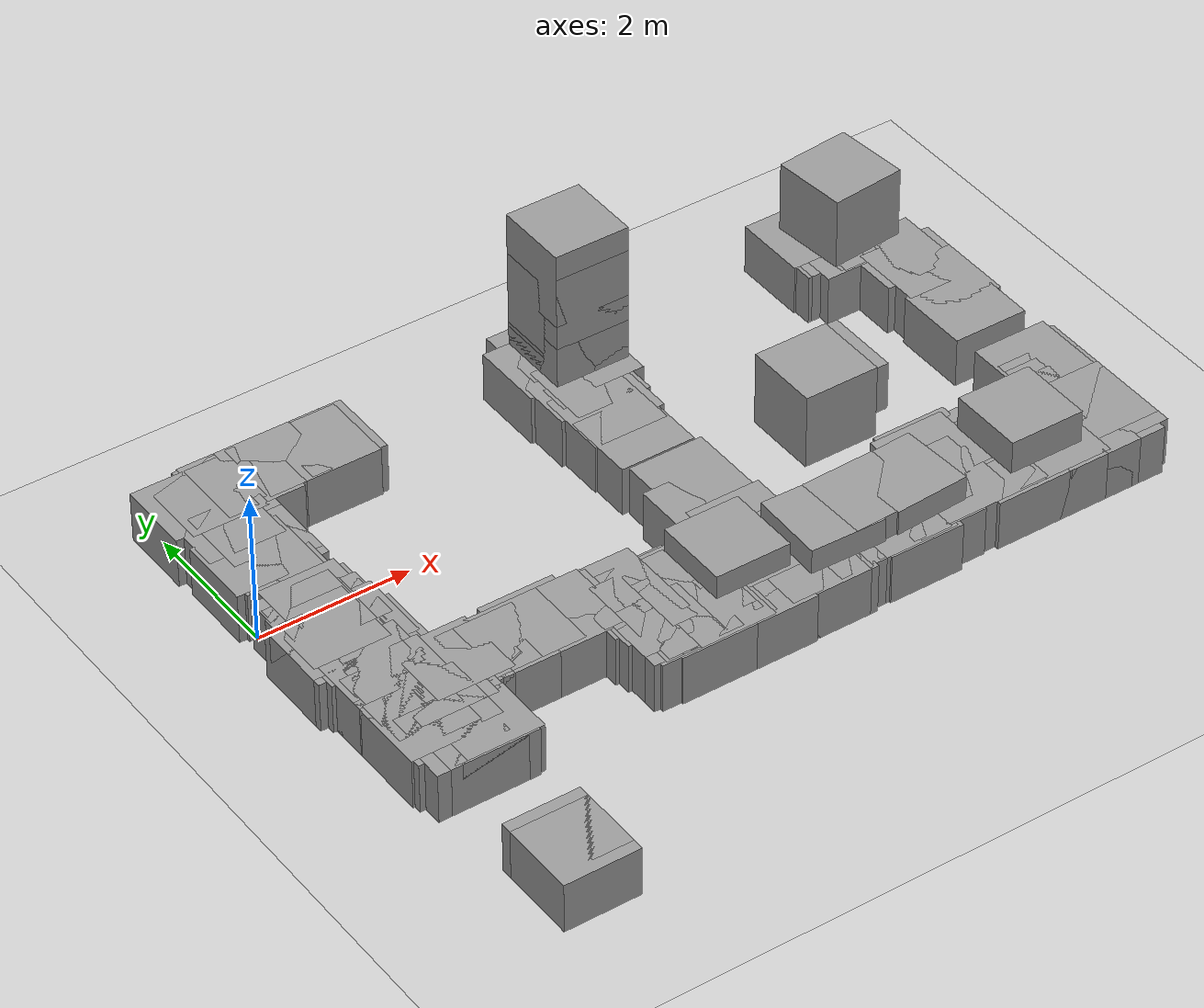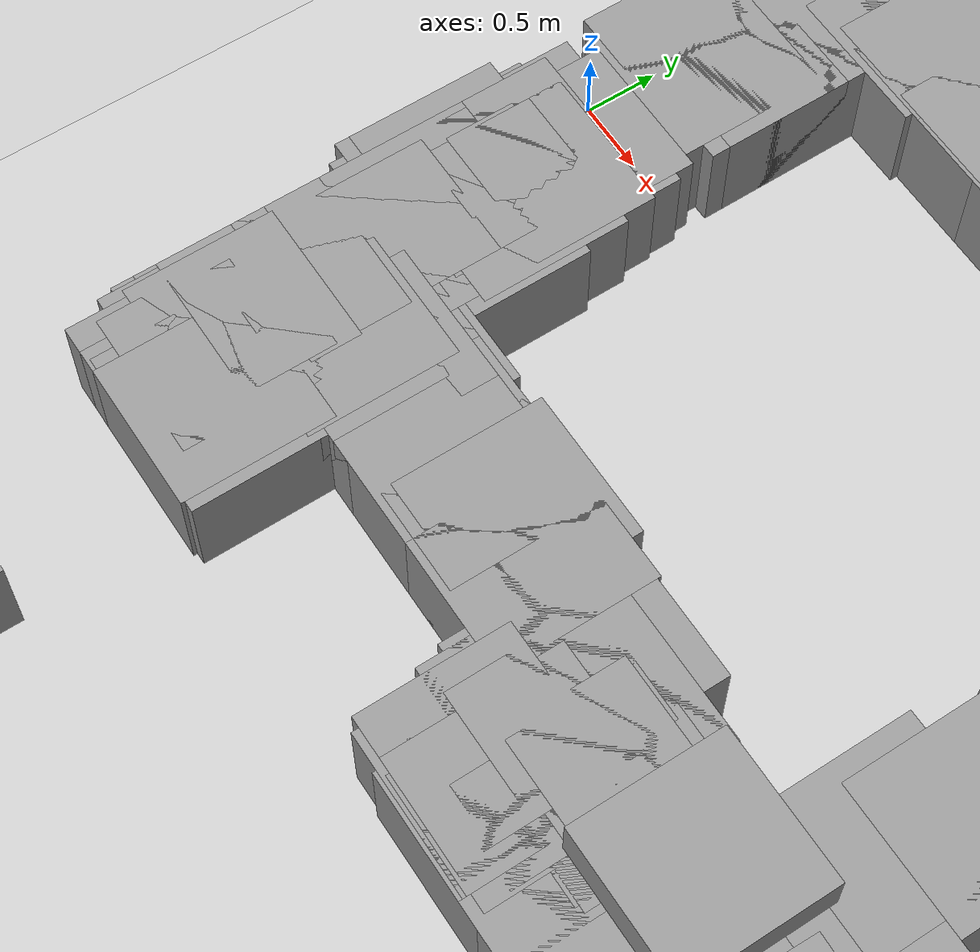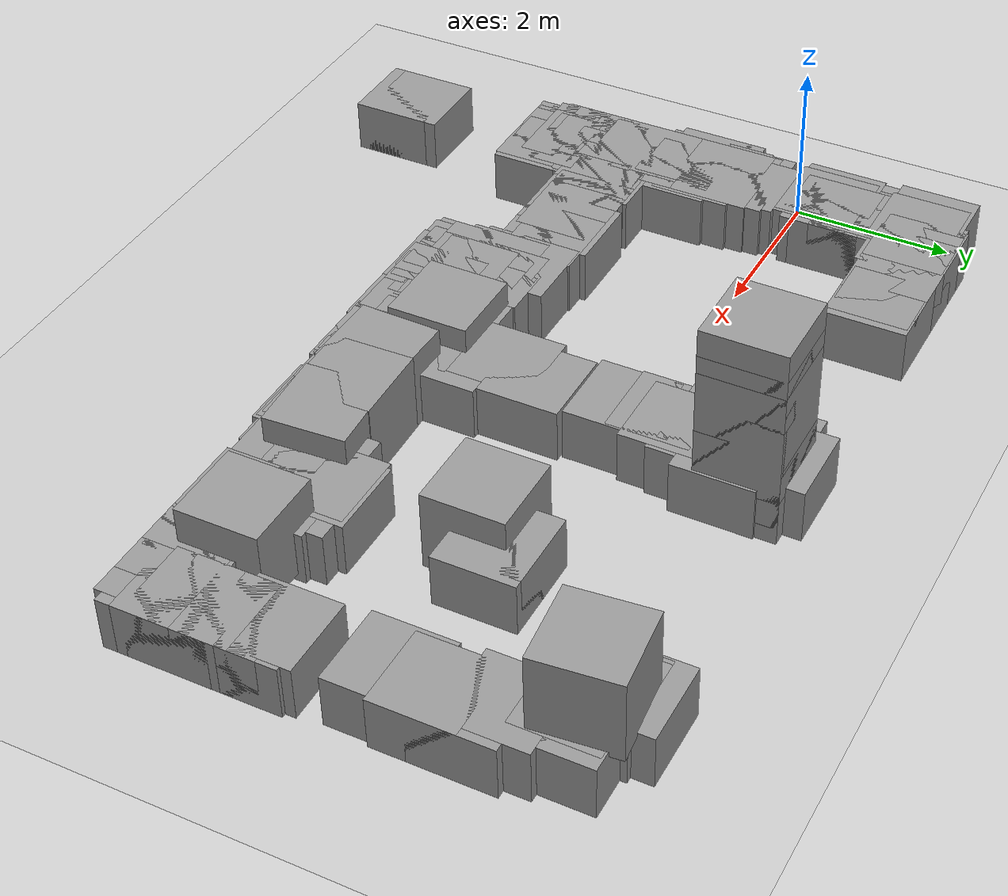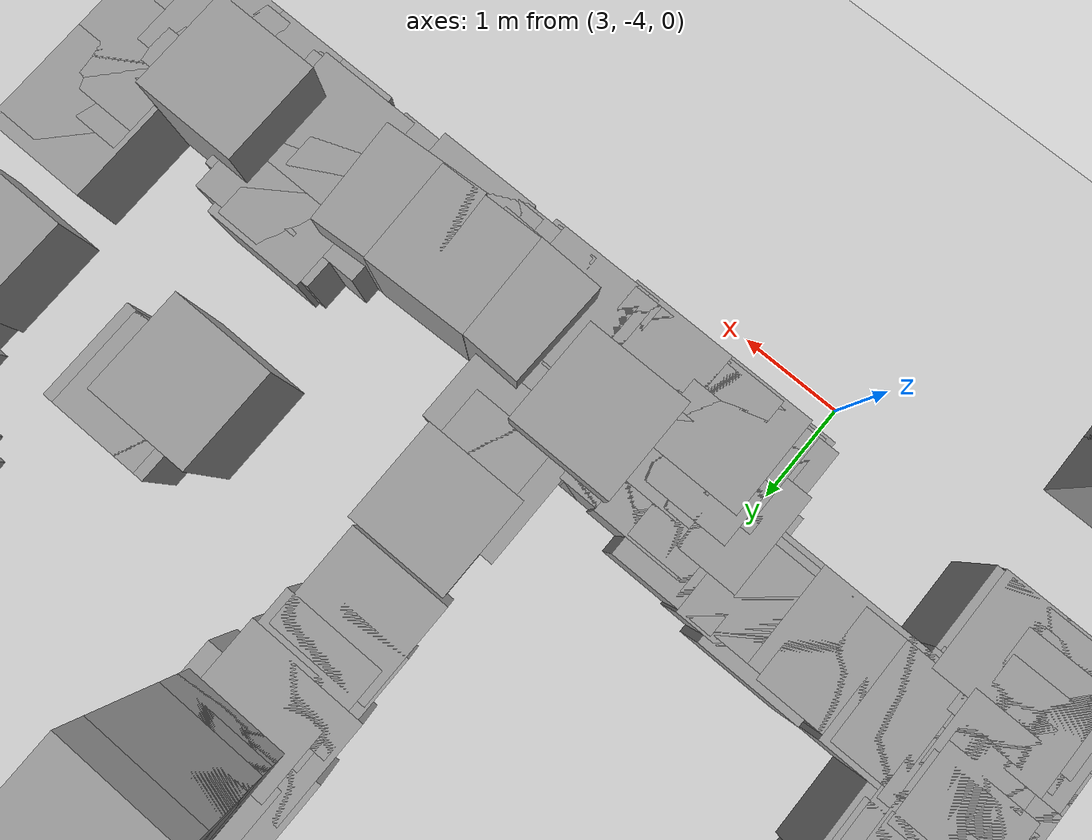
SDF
<sdf version="1.7">
 <world name="default">
  <model name="ground_plane">
   <static>1</static>
   <link name="link">
    <collision name="collision">
     <geometry><plane><normal>0 0 1</normal><size>100 100</size></plane></geometry>
     <surface>
      <contact><collide_bitmask>65535</collide_bitmask></contact>
      <friction><ode><mu>100</mu><mu2>50</mu2></ode></friction>
     </surface>
    </collision>
    <visual name="visual">
     <cast_shadows>0</cast_shadows>
     <geometry><plane><normal>0 0 1</normal><size>100 100</size></plane></geometry>
     <material>
      <script><uri>file://media/materials/scripts/gazebo.material</uri><name>Gazebo/Grey</name></script>
     </material>
    </visual>
   </link>
  </model>
  <include>
   <uri>model://unit_box</uri>
   <name>map_box_158</name>
   <pose>4.95719 1.04754 0.15000 0.00000 0.00000 0.00000</pose>
   <scale>0.05000 2.30000 0.30000</scale>
  </include>
  <include>
   <uri>model://unit_box</uri>
   <name>map_box_159</name>
   <pose>5.10719 1.82254 0.15000 0.00000 0.00000 0.00000</pose>
   <scale>0.05000 0.75000 0.30000</scale>
  </include>
  <include>
   <uri>model://unit_box</uri>
   <name>map_box_166</name>
   <pose>4.90719 1.59754 0.15000 0.00000 0.00000 0.00000</pose>
   <scale>0.05000 1.10000 0.30000</scale>
  </include>
  <include>
   <uri>model://unit_box</uri>
   <name>map_box_171</name>
   <pose>5.15719 0.99754 0.15000 0.00000 0.00000 0.00000</pose>
   <scale>0.05000 2.20000 0.30000</scale>
  </include>
  <include>
   <uri>model://unit_box</uri>
   <name>map_box_177</name>
   <pose>0.35719 1.22254 0.15000 0.00000 0.00000 0.00000</pose>
   <scale>0.05000 1.55000 0.30000</scale>
  </include>
  <include>
   <uri>model://unit_box</uri>
   <name>map_box_178</name>
   <pose>0.45719 1.72254 0.15000 0.00000 0.00000 0.00000</pose>
   <scale>0.05000 0.55000 0.30000</scale>
  </include>
  <include>
   <uri>model://unit_box</uri>
   <name>map_box_181</name>
   <pose>0.50719 1.17254 0.15000 0.00000 0.00000 0.00000</pose>
   <scale>0.05000 1.55000 0.30000</scale>
  </include>
  <include>
   <uri>model://unit_box</uri>
   <name>map_box_183</name>
   <pose>0.90719 1.84754 0.15000 0.00000 0.00000 0.00000</pose>
   <scale>0.05000 0.10000 0.30000</scale>
  </include>
  <include>
   <uri>model://unit_box</uri>
   <name>map_box_184</name>
   <pose>1.20719 1.84754 0.15000 0.00000 0.00000 0.00000</pose>
   <scale>0.25000 0.10000 0.30000</scale>
  </include>
  <include>
   <uri>model://unit_box</uri>
   <name>map_box_185</name>
   <pose>1.40719 1.84754 0.15000 0.00000 0.00000 0.00000</pose>
   <scale>0.05000 0.10000 0.30000</scale>
  </include>
  <include>
   <uri>model://unit_box</uri>
   <name>map_box_186</name>
   <pose>1.80719 1.84754 0.15000 0.00000 0.00000 0.00000</pose>
   <scale>0.35000 0.10000 0.30000</scale>
  </include>
  <include>
   <uri>model://unit_box</uri>
   <name>map_box_187</name>
   <pose>2.10719 1.84754 0.15000 0.00000 0.00000 0.00000</pose>
   <scale>0.15000 0.10000 0.30000</scale>
  </include>
  <include>
   <uri>model://unit_box</uri>
   <name>map_box_188</name>
   <pose>8.83219 1.84754 0.15000 0.00000 0.00000 0.00000</pose>
   <scale>0.10000 0.10000 0.30000</scale>
  </include>
  <include>
   <uri>model://unit_box</uri>
   <name>map_box_189</name>
   <pose>0.83219 1.82254 0.15000 0.00000 0.00000 0.00000</pose>
   <scale>0.10000 0.05000 0.30000</scale>
  </include>
  <include>
   <uri>model://unit_box</uri>
   <name>map_box_190</name>
   <pose>1.00719 1.82254 0.15000 0.00000 0.00000 0.00000</pose>
   <scale>0.15000 0.05000 0.30000</scale>
  </include>
  <include>
   <uri>model://unit_box</uri>
   <name>map_box_191</name>
   <pose>1.35719 1.82254 0.15000 0.00000 0.00000 0.00000</pose>
   <scale>0.05000 0.05000 0.30000</scale>
  </include>
  <include>
   <uri>model://unit_box</uri>
   <name>map_box_192</name>
   <pose>1.53219 1.82254 0.15000 0.00000 0.00000 0.00000</pose>
   <scale>0.20000 0.05000 0.30000</scale>
  </include>
  <include>
   <uri>model://unit_box</uri>
   <name>map_box_193</name>
   <pose>2.00719 1.82254 0.15000 0.00000 0.00000 0.00000</pose>
   <scale>0.05000 0.05000 0.30000</scale>
  </include>
  <include>
   <uri>model://unit_box</uri>
   <name>map_box_194</name>
   <pose>8.90719 1.59754 0.15000 0.00000 0.00000 0.00000</pose>
   <scale>0.05000 0.50000 0.30000</scale>
  </include>
  <include>
   <uri>model://unit_box</uri>
   <name>map_box_195</name>
   <pose>0.25719 1.77254 0.15000 0.00000 0.00000 0.00000</pose>
   <scale>0.05000 0.05000 0.30000</scale>
  </include>
  <include>
   <uri>model://unit_box</uri>
   <name>map_box_196</name>
   <pose>0.95719 1.77254 0.15000 0.00000 0.00000 0.00000</pose>
   <scale>0.05000 0.05000 0.30000</scale>
  </include>
  <include>
   <uri>model://unit_box</uri>
   <name>map_box_197</name>
   <pose>8.85719 1.59754 0.15000 0.00000 0.00000 0.00000</pose>
   <scale>0.05000 0.40000 0.30000</scale>
  </include>
  <include>
   <uri>model://unit_box</uri>
   <name>map_box_198</name>
   <pose>9.25719 1.49754 0.15000 0.00000 0.00000 0.00000</pose>
   <scale>0.05000 0.20000 0.30000</scale>
  </include>
  <include>
   <uri>model://unit_box</uri>
   <name>map_box_199</name>
   <pose>9.40719 1.52254 0.15000 0.00000 0.00000 0.00000</pose>
   <scale>0.15000 0.15000 0.30000</scale>
  </include>
  <include>
   <uri>model://unit_box</uri>
   <name>map_box_200</name>
   <pose>9.18219 1.47254 0.15000 0.00000 0.00000 0.00000</pose>
   <scale>0.10000 0.15000 0.30000</scale>
  </include>
  <include>
   <uri>model://unit_box</uri>
   <name>map_box_201</name>
   <pose>9.30719 1.47254 0.15000 0.00000 0.00000 0.00000</pose>
   <scale>0.05000 0.15000 0.30000</scale>
  </include>
  <include>
   <uri>model://unit_box</uri>
   <name>map_box_202</name>
   <pose>9.50719 0.89754 0.15000 0.00000 0.00000 0.00000</pose>
   <scale>0.05000 1.30000 0.30000</scale>
  </include>
  <include>
   <uri>model://unit_box</uri>
   <name>map_box_203</name>
   <pose>9.03219 1.44754 0.15000 0.00000 0.00000 0.00000</pose>
   <scale>0.20000 0.10000 0.30000</scale>
  </include>
  <include>
   <uri>model://unit_box</uri>
   <name>map_box_204</name>
   <pose>9.55719 -0.35246 0.15000 0.00000 0.00000 0.00000</pose>
   <scale>0.05000 3.70000 0.30000</scale>
  </include>
  <include>
   <uri>model://unit_box</uri>
   <name>map_box_205</name>
   <pose>5.10719 0.64754 0.15000 0.00000 0.00000 0.00000</pose>
   <scale>0.05000 1.50000 0.30000</scale>
  </include>
  <include>
   <uri>model://unit_box</uri>
   <name>map_box_206</name>
   <pose>5.30719 1.34754 0.15000 0.00000 0.00000 0.00000</pose>
   <scale>0.25000 0.10000 0.30000</scale>
  </include>
  <include>
   <uri>model://unit_box</uri>
   <name>map_box_207</name>
   <pose>0.55719 1.02254 0.15000 0.00000 0.00000 0.00000</pose>
   <scale>0.05000 0.15000 0.30000</scale>
  </include>
  <include>
   <uri>model://unit_box</uri>
   <name>map_box_208</name>
   <pose>0.55719 0.77254 0.15000 0.00000 0.00000 0.00000</pose>
   <scale>0.05000 0.05000 0.30000</scale>
  </include>
  <include>
   <uri>model://unit_box</uri>
   <name>map_box_209</name>
   <pose>5.00719 0.44754 0.15000 0.00000 0.00000 0.00000</pose>
   <scale>0.05000 0.60000 0.30000</scale>
  </include>
  <include>
   <uri>model://unit_box</uri>
   <name>map_box_210</name>
   <pose>0.55719 0.64754 0.15000 0.00000 0.00000 0.00000</pose>
   <scale>0.05000 0.10000 0.30000</scale>
  </include>
  <include>
   <uri>model://unit_box</uri>
   <name>map_box_211</name>
   <pose>9.60719 0.59754 0.15000 0.00000 0.00000 0.00000</pose>
   <scale>0.05000 0.20000 0.30000</scale>
  </include>
  <include>
   <uri>model://unit_box</uri>
   <name>map_box_212</name>
   <pose>0.30719 0.57254 0.15000 0.00000 0.00000 0.00000</pose>
   <scale>0.05000 0.05000 0.30000</scale>
  </include>
  <include>
   <uri>model://unit_box</uri>
   <name>map_box_213</name>
   <pose>0.45719 0.52254 0.15000 0.00000 0.00000 0.00000</pose>
   <scale>0.05000 0.15000 0.30000</scale>
  </include>
  <include>
   <uri>model://unit_box</uri>
   <name>map_box_214</name>
   <pose>0.40719 0.52254 0.15000 0.00000 0.00000 0.00000</pose>
   <scale>0.05000 0.05000 0.30000</scale>
  </include>
  <include>
   <uri>model://unit_box</uri>
   <name>map_box_215</name>
   <pose>9.60719 0.17254 0.15000 0.00000 0.00000 0.00000</pose>
   <scale>0.05000 0.45000 0.30000</scale>
  </include>
  <include>
   <uri>model://unit_box</uri>
   <name>map_box_216</name>
   <pose>5.03219 -0.05246 0.15000 0.00000 0.00000 0.00000</pose>
   <scale>0.10000 0.10000 0.30000</scale>
  </include>
  <include>
   <uri>model://unit_box</uri>
   <name>map_box_217</name>
   <pose>7.55719 -0.22746 0.15000 0.00000 0.00000 0.00000</pose>
   <scale>0.15000 0.15000 0.30000</scale>
  </include>
  <include>
   <uri>model://unit_box</uri>
   <name>map_box_218</name>
   <pose>7.65719 -0.22746 0.15000 0.00000 0.00000 0.00000</pose>
   <scale>0.05000 0.05000 0.30000</scale>
  </include>
  <include>
   <uri>model://unit_box</uri>
   <name>map_box_219</name>
   <pose>9.60719 -1.62746 0.15000 0.00000 0.00000 0.00000</pose>
   <scale>0.05000 2.75000 0.30000</scale>
  </include>
  <include>
   <uri>model://unit_box</uri>
   <name>map_box_220</name>
   <pose>0.53219 -0.47746 0.15000 0.00000 0.00000 0.00000</pose>
   <scale>0.20000 0.05000 0.30000</scale>
  </include>
  <include>
   <uri>model://unit_box</uri>
   <name>map_box_221</name>
   <pose>0.58219 -0.60246 0.15000 0.00000 0.00000 0.00000</pose>
   <scale>0.10000 0.20000 0.30000</scale>
  </include>
  <include>
   <uri>model://unit_box</uri>
   <name>map_box_222</name>
   <pose>0.38219 -0.60246 0.15000 0.00000 0.00000 0.00000</pose>
   <scale>0.10000 0.10000 0.30000</scale>
  </include>
  <include>
   <uri>model://unit_box</uri>
   <name>map_box_223</name>
   <pose>0.65719 -1.02746 0.15000 0.00000 0.00000 0.00000</pose>
   <scale>0.05000 0.95000 0.30000</scale>
  </include>
  <include>
   <uri>model://unit_box</uri>
   <name>map_box_224</name>
   <pose>0.35719 -0.92746 0.15000 0.00000 0.00000 0.00000</pose>
   <scale>0.05000 0.55000 0.30000</scale>
  </include>
  <include>
   <uri>model://unit_box</uri>
   <name>map_box_225</name>
   <pose>0.60719 -0.80246 0.15000 0.00000 0.00000 0.00000</pose>
   <scale>0.05000 0.20000 0.30000</scale>
  </include>
  <include>
   <uri>model://unit_box</uri>
   <name>map_box_226</name>
   <pose>0.40719 -0.77746 0.15000 0.00000 0.00000 0.00000</pose>
   <scale>0.05000 0.05000 0.30000</scale>
  </include>
  <include>
   <uri>model://unit_box</uri>
   <name>map_box_227</name>
   <pose>0.40719 -0.87746 0.15000 0.00000 0.00000 0.00000</pose>
   <scale>0.05000 0.05000 0.30000</scale>
  </include>
  <include>
   <uri>model://unit_box</uri>
   <name>map_box_228</name>
   <pose>0.60719 -1.02746 0.15000 0.00000 0.00000 0.00000</pose>
   <scale>0.05000 0.15000 0.30000</scale>
  </include>
  <include>
   <uri>model://unit_box</uri>
   <name>map_box_229</name>
   <pose>0.25719 -1.07746 0.15000 0.00000 0.00000 0.00000</pose>
   <scale>0.05000 0.05000 0.30000</scale>
  </include>
  <include>
   <uri>model://unit_box</uri>
   <name>map_box_230</name>
   <pose>0.43219 -1.07746 0.15000 0.00000 0.00000 0.00000</pose>
   <scale>0.10000 0.05000 0.30000</scale>
  </include>
  <include>
   <uri>model://unit_box</uri>
   <name>map_box_231</name>
   <pose>5.10719 -1.07746 0.15000 0.00000 0.00000 0.00000</pose>
   <scale>0.25000 0.05000 0.30000</scale>
  </include>
  <include>
   <uri>model://unit_box</uri>
   <name>map_box_232</name>
   <pose>0.40719 -1.37746 0.15000 0.00000 0.00000 0.00000</pose>
   <scale>0.05000 0.55000 0.30000</scale>
  </include>
  <include>
   <uri>model://unit_box</uri>
   <name>map_box_233</name>
   <pose>4.98219 -1.52746 0.15000 0.00000 0.00000 0.00000</pose>
   <scale>0.10000 0.85000 0.30000</scale>
  </include>
  <include>
   <uri>model://unit_box</uri>
   <name>map_box_234</name>
   <pose>5.18219 -2.07746 0.15000 0.00000 0.00000 0.00000</pose>
   <scale>0.10000 1.95000 0.30000</scale>
  </include>
  <include>
   <uri>model://unit_box</uri>
   <name>map_box_235</name>
   <pose>0.25719 -1.17746 0.15000 0.00000 0.00000 0.00000</pose>
   <scale>0.05000 0.05000 0.30000</scale>
  </include>
  <include>
   <uri>model://unit_box</uri>
   <name>map_box_236</name>
   <pose>0.60719 -1.20246 0.15000 0.00000 0.00000 0.00000</pose>
   <scale>0.05000 0.10000 0.30000</scale>
  </include>
  <include>
   <uri>model://unit_box</uri>
   <name>map_box_237</name>
   <pose>0.70719 -1.32746 0.15000 0.00000 0.00000 0.00000</pose>
   <scale>0.05000 0.25000 0.30000</scale>
  </include>
  <include>
   <uri>model://unit_box</uri>
   <name>map_box_238</name>
   <pose>0.35719 -1.27746 0.15000 0.00000 0.00000 0.00000</pose>
   <scale>0.05000 0.05000 0.30000</scale>
  </include>
  <include>
   <uri>model://unit_box</uri>
   <name>map_box_239</name>
   <pose>0.60719 -1.32746 0.15000 0.00000 0.00000 0.00000</pose>
   <scale>0.05000 0.05000 0.30000</scale>
  </include>
  <include>
   <uri>model://unit_box</uri>
   <name>map_box_240</name>
   <pose>0.45719 -1.37746 0.15000 0.00000 0.00000 0.00000</pose>
   <scale>0.05000 0.05000 0.30000</scale>
  </include>
  <include>
   <uri>model://unit_box</uri>
   <name>map_box_241</name>
   <pose>0.58219 -2.07746 0.15000 0.00000 0.00000 0.00000</pose>
   <scale>0.10000 1.35000 0.30000</scale>
  </include>
  <include>
   <uri>model://unit_box</uri>
   <name>map_box_242</name>
   <pose>0.45719 -1.65246 0.15000 0.00000 0.00000 0.00000</pose>
   <scale>0.05000 0.10000 0.30000</scale>
  </include>
  <include>
   <uri>model://unit_box</uri>
   <name>map_box_243</name>
   <pose>0.40719 -1.75246 0.15000 0.00000 0.00000 0.00000</pose>
   <scale>0.05000 0.10000 0.30000</scale>
  </include>
  <include>
   <uri>model://unit_box</uri>
   <name>map_box_244</name>
   <pose>0.50719 -1.72746 0.15000 0.00000 0.00000 0.00000</pose>
   <scale>0.05000 0.05000 0.30000</scale>
  </include>
  <include>
   <uri>model://unit_box</uri>
   <name>map_box_245</name>
   <pose>9.65719 -1.75246 0.15000 0.00000 0.00000 0.00000</pose>
   <scale>0.05000 0.10000 0.30000</scale>
  </include>
  <include>
   <uri>model://unit_box</uri>
   <name>map_box_246</name>
   <pose>0.50719 -1.82746 0.15000 0.00000 0.00000 0.00000</pose>
   <scale>0.05000 0.05000 0.30000</scale>
  </include>
  <include>
   <uri>model://unit_box</uri>
   <name>map_box_247</name>
   <pose>0.40719 -1.87746 0.15000 0.00000 0.00000 0.00000</pose>
   <scale>0.05000 0.05000 0.30000</scale>
  </include>
  <include>
   <uri>model://unit_box</uri>
   <name>map_box_248</name>
   <pose>0.40719 -1.97746 0.15000 0.00000 0.00000 0.00000</pose>
   <scale>0.05000 0.05000 0.30000</scale>
  </include>
  <include>
   <uri>model://unit_box</uri>
   <name>map_box_249</name>
   <pose>5.00719 -2.52746 0.15000 0.00000 0.00000 0.00000</pose>
   <scale>0.05000 1.15000 0.30000</scale>
  </include>
  <include>
   <uri>model://unit_box</uri>
   <name>map_box_250</name>
   <pose>9.65719 -2.00246 0.15000 0.00000 0.00000 0.00000</pose>
   <scale>0.05000 0.10000 0.30000</scale>
  </include>
  <include>
   <uri>model://unit_box</uri>
   <name>map_box_251</name>
   <pose>0.45719 -2.05246 0.15000 0.00000 0.00000 0.00000</pose>
   <scale>0.05000 0.10000 0.30000</scale>
  </include>
  <include>
   <uri>model://unit_box</uri>
   <name>map_box_252</name>
   <pose>0.40719 -2.07746 0.15000 0.00000 0.00000 0.00000</pose>
   <scale>0.05000 0.05000 0.30000</scale>
  </include>
  <include>
   <uri>model://unit_box</uri>
   <name>map_box_253</name>
   <pose>2.35719 -2.10246 0.15000 0.00000 0.00000 0.00000</pose>
   <scale>1.95000 0.10000 0.30000</scale>
  </include>
  <include>
   <uri>model://unit_box</uri>
   <name>map_box_254</name>
   <pose>1.18219 -2.12746 0.15000 0.00000 0.00000 0.00000</pose>
   <scale>0.40000 0.05000 0.30000</scale>
  </include>
  <include>
   <uri>model://unit_box</uri>
   <name>map_box_255</name>
   <pose>3.35719 -2.57746 0.15000 0.00000 0.00000 0.00000</pose>
   <scale>0.05000 0.95000 0.30000</scale>
  </include>
  <include>
   <uri>model://unit_box</uri>
   <name>map_box_256</name>
   <pose>9.65719 -2.12746 0.15000 0.00000 0.00000 0.00000</pose>
   <scale>0.05000 0.05000 0.30000</scale>
  </include>
  <include>
   <uri>model://unit_box</uri>
   <name>map_box_257</name>
   <pose>0.40719 -2.17746 0.15000 0.00000 0.00000 0.00000</pose>
   <scale>0.05000 0.05000 0.30000</scale>
  </include>
  <include>
   <uri>model://unit_box</uri>
   <name>map_box_258</name>
   <pose>1.10719 -2.17746 0.15000 0.00000 0.00000 0.00000</pose>
   <scale>0.35000 0.05000 0.30000</scale>
  </include>
  <include>
   <uri>model://unit_box</uri>
   <name>map_box_259</name>
   <pose>1.35719 -2.17746 0.15000 0.00000 0.00000 0.00000</pose>
   <scale>0.05000 0.05000 0.30000</scale>
  </include>
  <include>
   <uri>model://unit_box</uri>
   <name>map_box_260</name>
   <pose>1.50719 -2.17746 0.15000 0.00000 0.00000 0.00000</pose>
   <scale>0.05000 0.05000 0.30000</scale>
  </include>
  <include>
   <uri>model://unit_box</uri>
   <name>map_box_261</name>
   <pose>1.83219 -2.17746 0.15000 0.00000 0.00000 0.00000</pose>
   <scale>0.20000 0.05000 0.30000</scale>
  </include>
  <include>
   <uri>model://unit_box</uri>
   <name>map_box_262</name>
   <pose>2.08219 -2.17746 0.15000 0.00000 0.00000 0.00000</pose>
   <scale>0.20000 0.05000 0.30000</scale>
  </include>
  <include>
   <uri>model://unit_box</uri>
   <name>map_box_263</name>
   <pose>2.63219 -2.17746 0.15000 0.00000 0.00000 0.00000</pose>
   <scale>0.20000 0.05000 0.30000</scale>
  </include>
  <include>
   <uri>model://unit_box</uri>
   <name>map_box_264</name>
   <pose>3.30719 -2.20246 0.15000 0.00000 0.00000 0.00000</pose>
   <scale>0.05000 0.10000 0.30000</scale>
  </include>
  <include>
   <uri>model://unit_box</uri>
   <name>map_box_265</name>
   <pose>0.48219 -2.22746 0.15000 0.00000 0.00000 0.00000</pose>
   <scale>0.10000 0.05000 0.30000</scale>
  </include>
  <include>
   <uri>model://unit_box</uri>
   <name>map_box_266</name>
   <pose>0.95719 -2.22746 0.15000 0.00000 0.00000 0.00000</pose>
   <scale>0.05000 0.05000 0.30000</scale>
  </include>
  <include>
   <uri>model://unit_box</uri>
   <name>map_box_267</name>
   <pose>1.10719 -2.22746 0.15000 0.00000 0.00000 0.00000</pose>
   <scale>0.05000 0.05000 0.30000</scale>
  </include>
  <include>
   <uri>model://unit_box</uri>
   <name>map_box_268</name>
   <pose>1.95719 -2.22746 0.15000 0.00000 0.00000 0.00000</pose>
   <scale>0.15000 0.05000 0.30000</scale>
  </include>
  <include>
   <uri>model://unit_box</uri>
   <name>map_box_269</name>
   <pose>2.70719 -2.22746 0.15000 0.00000 0.00000 0.00000</pose>
   <scale>0.15000 0.05000 0.30000</scale>
  </include>
  <include>
   <uri>model://unit_box</uri>
   <name>map_box_270</name>
   <pose>7.68219 -2.22746 0.15000 0.00000 0.00000 0.00000</pose>
   <scale>0.70000 0.05000 0.30000</scale>
  </include>
  <include>
   <uri>model://unit_box</uri>
   <name>map_box_271</name>
   <pose>9.65719 -2.22746 0.15000 0.00000 0.00000 0.00000</pose>
   <scale>0.05000 0.05000 0.30000</scale>
  </include>
  <include>
   <uri>model://unit_box</uri>
   <name>map_box_272</name>
   <pose>0.40719 -2.27746 0.15000 0.00000 0.00000 0.00000</pose>
   <scale>0.05000 0.05000 0.30000</scale>
  </include>
  <include>
   <uri>model://unit_box</uri>
   <name>map_box_273</name>
   <pose>0.50719 -2.27746 0.15000 0.00000 0.00000 0.00000</pose>
   <scale>0.05000 0.05000 0.30000</scale>
  </include>
  <include>
   <uri>model://unit_box</uri>
   <name>map_box_274</name>
   <pose>0.90719 -2.27746 0.15000 0.00000 0.00000 0.00000</pose>
   <scale>0.05000 0.05000 0.30000</scale>
  </include>
  <include>
   <uri>model://unit_box</uri>
   <name>map_box_275</name>
   <pose>7.60719 -2.27746 0.15000 0.00000 0.00000 0.00000</pose>
   <scale>0.55000 0.05000 0.30000</scale>
  </include>
  <include>
   <uri>model://unit_box</uri>
   <name>map_box_276</name>
   <pose>7.98219 -2.52746 0.15000 0.00000 0.00000 0.00000</pose>
   <scale>0.10000 0.55000 0.30000</scale>
  </include>
  <include>
   <uri>model://unit_box</uri>
   <name>map_box_277</name>
   <pose>0.85719 -2.32746 0.15000 0.00000 0.00000 0.00000</pose>
   <scale>0.05000 0.05000 0.30000</scale>
  </include>
  <include>
   <uri>model://unit_box</uri>
   <name>map_box_278</name>
   <pose>3.30719 -2.40246 0.15000 0.00000 0.00000 0.00000</pose>
   <scale>0.05000 0.20000 0.30000</scale>
  </include>
  <include>
   <uri>model://unit_box</uri>
   <name>map_box_279</name>
   <pose>3.95719 -2.40246 0.15000 0.00000 0.00000 0.00000</pose>
   <scale>0.05000 0.20000 0.30000</scale>
  </include>
  <include>
   <uri>model://unit_box</uri>
   <name>map_box_280</name>
   <pose>7.35719 -2.55246 0.15000 0.00000 0.00000 0.00000</pose>
   <scale>0.05000 0.50000 0.30000</scale>
  </include>
  <include>
   <uri>model://unit_box</uri>
   <name>map_box_281</name>
   <pose>7.90719 -2.32746 0.15000 0.00000 0.00000 0.00000</pose>
   <scale>0.05000 0.05000 0.30000</scale>
  </include>
  <include>
   <uri>model://unit_box</uri>
   <name>map_box_282</name>
   <pose>9.65719 -2.32746 0.15000 0.00000 0.00000 0.00000</pose>
   <scale>0.05000 0.05000 0.30000</scale>
  </include>
  <include>
   <uri>model://unit_box</uri>
   <name>map_box_283</name>
   <pose>0.43219 -2.37746 0.15000 0.00000 0.00000 0.00000</pose>
   <scale>0.10000 0.05000 0.30000</scale>
  </include>
  <include>
   <uri>model://unit_box</uri>
   <name>map_box_284</name>
   <pose>0.80719 -2.37746 0.15000 0.00000 0.00000 0.00000</pose>
   <scale>0.05000 0.05000 0.30000</scale>
  </include>
  <include>
   <uri>model://unit_box</uri>
   <name>map_box_285</name>
   <pose>3.63219 -2.37746 0.15000 0.00000 0.00000 0.00000</pose>
   <scale>0.10000 0.05000 0.30000</scale>
  </include>
  <include>
   <uri>model://unit_box</uri>
   <name>map_box_286</name>
   <pose>4.00719 -2.40246 0.15000 0.00000 0.00000 0.00000</pose>
   <scale>0.05000 0.10000 0.30000</scale>
  </include>
  <include>
   <uri>model://unit_box</uri>
   <name>map_box_287</name>
   <pose>7.40719 -2.67746 0.15000 0.00000 0.00000 0.00000</pose>
   <scale>0.05000 0.65000 0.30000</scale>
  </include>
  <include>
   <uri>model://unit_box</uri>
   <name>map_box_288</name>
   <pose>0.48219 -2.42746 0.15000 0.00000 0.00000 0.00000</pose>
   <scale>0.10000 0.05000 0.30000</scale>
  </include>
  <include>
   <uri>model://unit_box</uri>
   <name>map_box_289</name>
   <pose>3.60719 -2.45246 0.15000 0.00000 0.00000 0.00000</pose>
   <scale>0.05000 0.10000 0.30000</scale>
  </include>
  <include>
   <uri>model://unit_box</uri>
   <name>map_box_290</name>
   <pose>0.40719 -2.47746 0.15000 0.00000 0.00000 0.00000</pose>
   <scale>0.05000 0.05000 0.30000</scale>
  </include>
  <include>
   <uri>model://unit_box</uri>
   <name>map_box_291</name>
   <pose>3.55719 -2.52746 0.15000 0.00000 0.00000 0.00000</pose>
   <scale>0.05000 0.15000 0.30000</scale>
  </include>
  <include>
   <uri>model://unit_box</uri>
   <name>map_box_292</name>
   <pose>3.90719 -2.60246 0.15000 0.00000 0.00000 0.00000</pose>
   <scale>0.05000 0.30000 0.30000</scale>
  </include>
  <include>
   <uri>model://unit_box</uri>
   <name>map_box_293</name>
   <pose>9.65719 -2.47746 0.15000 0.00000 0.00000 0.00000</pose>
   <scale>0.05000 0.05000 0.30000</scale>
  </include>
  <include>
   <uri>model://unit_box</uri>
   <name>map_box_294</name>
   <pose>3.95719 -2.57746 0.15000 0.00000 0.00000 0.00000</pose>
   <scale>0.05000 0.05000 0.30000</scale>
  </include>
  <include>
   <uri>model://unit_box</uri>
   <name>map_box_295</name>
   <pose>5.05719 -2.80246 0.15000 0.00000 0.00000 0.00000</pose>
   <scale>0.05000 0.50000 0.30000</scale>
  </include>
  <include>
   <uri>model://unit_box</uri>
   <name>map_box_296</name>
   <pose>9.65719 -2.57746 0.15000 0.00000 0.00000 0.00000</pose>
   <scale>0.05000 0.05000 0.30000</scale>
  </include>
  <include>
   <uri>model://unit_box</uri>
   <name>map_box_297</name>
   <pose>0.40719 -2.62746 0.15000 0.00000 0.00000 0.00000</pose>
   <scale>0.05000 0.05000 0.30000</scale>
  </include>
  <include>
   <uri>model://unit_box</uri>
   <name>map_box_298</name>
   <pose>0.65719 -2.67746 0.15000 0.00000 0.00000 0.00000</pose>
   <scale>0.05000 0.05000 0.30000</scale>
  </include>
  <include>
   <uri>model://unit_box</uri>
   <name>map_box_299</name>
   <pose>4.00719 -2.77746 0.15000 0.00000 0.00000 0.00000</pose>
   <scale>0.05000 0.25000 0.30000</scale>
  </include>
  <include>
   <uri>model://unit_box</uri>
   <name>map_box_300</name>
   <pose>9.65719 -2.70246 0.15000 0.00000 0.00000 0.00000</pose>
   <scale>0.05000 0.10000 0.30000</scale>
  </include>
  <include>
   <uri>model://unit_box</uri>
   <name>map_box_301</name>
   <pose>0.45719 -2.72746 0.15000 0.00000 0.00000 0.00000</pose>
   <scale>0.05000 0.05000 0.30000</scale>
  </include>
  <include>
   <uri>model://unit_box</uri>
   <name>map_box_302</name>
   <pose>3.68219 -2.72746 0.15000 0.00000 0.00000 0.00000</pose>
   <scale>0.10000 0.05000 0.30000</scale>
  </include>
  <include>
   <uri>model://unit_box</uri>
   <name>map_box_303</name>
   <pose>3.95719 -2.75246 0.15000 0.00000 0.00000 0.00000</pose>
   <scale>0.05000 0.10000 0.30000</scale>
  </include>
  <include>
   <uri>model://unit_box</uri>
   <name>map_box_304</name>
   <pose>0.40719 -2.77746 0.15000 0.00000 0.00000 0.00000</pose>
   <scale>0.05000 0.05000 0.30000</scale>
  </include>
  <include>
   <uri>model://unit_box</uri>
   <name>map_box_305</name>
   <pose>0.55719 -2.95246 0.15000 0.00000 0.00000 0.00000</pose>
   <scale>0.05000 0.40000 0.30000</scale>
  </include>
  <include>
   <uri>model://unit_box</uri>
   <name>map_box_306</name>
   <pose>0.65719 -2.77746 0.15000 0.00000 0.00000 0.00000</pose>
   <scale>0.05000 0.05000 0.30000</scale>
  </include>
  <include>
   <uri>model://unit_box</uri>
   <name>map_box_307</name>
   <pose>3.65719 -2.82746 0.15000 0.00000 0.00000 0.00000</pose>
   <scale>0.05000 0.15000 0.30000</scale>
  </include>
  <include>
   <uri>model://unit_box</uri>
   <name>map_box_308</name>
   <pose>3.40719 -2.82746 0.15000 0.00000 0.00000 0.00000</pose>
   <scale>0.05000 0.05000 0.30000</scale>
  </include>
  <include>
   <uri>model://unit_box</uri>
   <name>map_box_309</name>
   <pose>7.95719 -2.87746 0.15000 0.00000 0.00000 0.00000</pose>
   <scale>0.05000 0.15000 0.30000</scale>
  </include>
  <include>
   <uri>model://unit_box</uri>
   <name>map_box_310</name>
   <pose>9.65719 -2.87746 0.15000 0.00000 0.00000 0.00000</pose>
   <scale>0.05000 0.15000 0.30000</scale>
  </include>
  <include>
   <uri>model://unit_box</uri>
   <name>map_box_311</name>
   <pose>0.43219 -2.87746 0.15000 0.00000 0.00000 0.00000</pose>
   <scale>0.10000 0.05000 0.30000</scale>
  </include>
  <include>
   <uri>model://unit_box</uri>
   <name>map_box_312</name>
   <pose>0.60719 -2.87746 0.15000 0.00000 0.00000 0.00000</pose>
   <scale>0.05000 0.05000 0.30000</scale>
  </include>
  <include>
   <uri>model://unit_box</uri>
   <name>map_box_313</name>
   <pose>3.95719 -2.87746 0.15000 0.00000 0.00000 0.00000</pose>
   <scale>0.05000 0.05000 0.30000</scale>
  </include>
  <include>
   <uri>model://unit_box</uri>
   <name>map_box_314</name>
   <pose>7.45719 -2.92746 0.15000 0.00000 0.00000 0.00000</pose>
   <scale>0.05000 0.15000 0.30000</scale>
  </include>
  <include>
   <uri>model://unit_box</uri>
   <name>map_box_315</name>
   <pose>7.90719 -2.90246 0.15000 0.00000 0.00000 0.00000</pose>
   <scale>0.05000 0.10000 0.30000</scale>
  </include>
  <include>
   <uri>model://unit_box</uri>
   <name>map_box_316</name>
   <pose>3.40719 -3.00246 0.15000 0.00000 0.00000 0.00000</pose>
   <scale>0.05000 0.20000 0.30000</scale>
  </include>
  <include>
   <uri>model://unit_box</uri>
   <name>map_box_317</name>
   <pose>3.60719 -3.00246 0.15000 0.00000 0.00000 0.00000</pose>
   <scale>0.05000 0.20000 0.30000</scale>
  </include>
  <include>
   <uri>model://unit_box</uri>
   <name>map_box_318</name>
   <pose>6.48219 -2.97746 0.15000 0.00000 0.00000 0.00000</pose>
   <scale>0.10000 0.15000 0.30000</scale>
  </include>
  <include>
   <uri>model://unit_box</uri>
   <name>map_box_319</name>
   <pose>6.98219 -2.95246 0.15000 0.00000 0.00000 0.00000</pose>
   <scale>0.80000 0.10000 0.30000</scale>
  </include>
  <include>
   <uri>model://unit_box</uri>
   <name>map_box_320</name>
   <pose>7.85719 -2.92746 0.15000 0.00000 0.00000 0.00000</pose>
   <scale>0.05000 0.05000 0.30000</scale>
  </include>
  <include>
   <uri>model://unit_box</uri>
   <name>map_box_321</name>
   <pose>8.78219 -2.92746 0.15000 0.00000 0.00000 0.00000</pose>
   <scale>1.60000 0.05000 0.30000</scale>
  </include>
  <include>
   <uri>model://unit_box</uri>
   <name>map_box_322</name>
   <pose>3.55719 -3.02746 0.15000 0.00000 0.00000 0.00000</pose>
   <scale>0.05000 0.15000 0.30000</scale>
  </include>
  <include>
   <uri>model://unit_box</uri>
   <name>map_box_323</name>
   <pose>3.68219 -3.00246 0.15000 0.00000 0.00000 0.00000</pose>
   <scale>0.10000 0.10000 0.30000</scale>
  </include>
  <include>
   <uri>model://unit_box</uri>
   <name>map_box_324</name>
   <pose>3.90719 -3.00246 0.15000 0.00000 0.00000 0.00000</pose>
   <scale>0.15000 0.10000 0.30000</scale>
  </include>
  <include>
   <uri>model://unit_box</uri>
   <name>map_box_325</name>
   <pose>4.05719 -3.00246 0.15000 0.00000 0.00000 0.00000</pose>
   <scale>0.05000 0.10000 0.30000</scale>
  </include>
  <include>
   <uri>model://unit_box</uri>
   <name>map_box_326</name>
   <pose>5.25719 -3.02746 0.15000 0.00000 0.00000 0.00000</pose>
   <scale>0.05000 0.15000 0.30000</scale>
  </include>
  <include>
   <uri>model://unit_box</uri>
   <name>map_box_327</name>
   <pose>5.35719 -3.02746 0.15000 0.00000 0.00000 0.00000</pose>
   <scale>0.05000 0.15000 0.30000</scale>
  </include>
  <include>
   <uri>model://unit_box</uri>
   <name>map_box_328</name>
   <pose>5.93219 -3.00246 0.15000 0.00000 0.00000 0.00000</pose>
   <scale>1.00000 0.10000 0.30000</scale>
  </include>
  <include>
   <uri>model://unit_box</uri>
   <name>map_box_329</name>
   <pose>6.55719 -3.00246 0.15000 0.00000 0.00000 0.00000</pose>
   <scale>0.05000 0.10000 0.30000</scale>
  </include>
  <include>
   <uri>model://unit_box</uri>
   <name>map_box_330</name>
   <pose>8.15719 -2.97746 0.15000 0.00000 0.00000 0.00000</pose>
   <scale>0.35000 0.05000 0.30000</scale>
  </include>
  <include>
   <uri>model://unit_box</uri>
   <name>map_box_331</name>
   <pose>8.70719 -2.97746 0.15000 0.00000 0.00000 0.00000</pose>
   <scale>0.65000 0.05000 0.30000</scale>
  </include>
  <include>
   <uri>model://unit_box</uri>
   <name>map_box_332</name>
   <pose>9.18219 -2.97746 0.15000 0.00000 0.00000 0.00000</pose>
   <scale>0.20000 0.05000 0.30000</scale>
  </include>
  <include>
   <uri>model://unit_box</uri>
   <name>map_box_333</name>
   <pose>9.53219 -2.97746 0.15000 0.00000 0.00000 0.00000</pose>
   <scale>0.10000 0.05000 0.30000</scale>
  </include>
  <include>
   <uri>model://unit_box</uri>
   <name>map_box_334</name>
   <pose>3.48219 -3.05246 0.15000 0.00000 0.00000 0.00000</pose>
   <scale>0.10000 0.10000 0.30000</scale>
  </include>
  <include>
   <uri>model://unit_box</uri>
   <name>map_box_335</name>
   <pose>3.78219 -3.02746 0.15000 0.00000 0.00000 0.00000</pose>
   <scale>0.10000 0.05000 0.30000</scale>
  </include>
  <include>
   <uri>model://unit_box</uri>
   <name>map_box_336</name>
   <pose>4.00719 -3.05246 0.15000 0.00000 0.00000 0.00000</pose>
   <scale>0.05000 0.10000 0.30000</scale>
  </include>
  <include>
   <uri>model://unit_box</uri>
   <name>map_box_337</name>
   <pose>4.53219 -3.02746 0.15000 0.00000 0.00000 0.00000</pose>
   <scale>0.90000 0.05000 0.30000</scale>
  </include>
  <include>
   <uri>model://unit_box</uri>
   <name>map_box_338</name>
   <pose>5.30719 -3.05246 0.15000 0.00000 0.00000 0.00000</pose>
   <scale>0.05000 0.10000 0.30000</scale>
  </include>
  <include>
   <uri>model://unit_box</uri>
   <name>map_box_339</name>
   <pose>5.40719 -3.05246 0.15000 0.00000 0.00000 0.00000</pose>
   <scale>0.05000 0.10000 0.30000</scale>
  </include>
  <include>
   <uri>model://unit_box</uri>
   <name>map_box_340</name>
   <pose>6.60719 -3.02746 0.15000 0.00000 0.00000 0.00000</pose>
   <scale>0.05000 0.05000 0.30000</scale>
  </include>
  <include>
   <uri>model://unit_box</uri>
   <name>map_box_341</name>
   <pose>0.60719 -3.10246 0.15000 0.00000 0.00000 0.00000</pose>
   <scale>0.05000 0.10000 0.30000</scale>
  </include>
  <include>
   <uri>model://unit_box</uri>
   <name>map_box_342</name>
   <pose>0.75719 -3.10246 0.15000 0.00000 0.00000 0.00000</pose>
   <scale>0.05000 0.10000 0.30000</scale>
  </include>
  <include>
   <uri>model://unit_box</uri>
   <name>map_box_343</name>
   <pose>0.90719 -3.10246 0.15000 0.00000 0.00000 0.00000</pose>
   <scale>0.05000 0.10000 0.30000</scale>
  </include>
  <include>
   <uri>model://unit_box</uri>
   <name>map_box_344</name>
   <pose>3.73219 -3.07746 0.15000 0.00000 0.00000 0.00000</pose>
   <scale>0.10000 0.05000 0.30000</scale>
  </include>
  <include>
   <uri>model://unit_box</uri>
   <name>map_box_345</name>
   <pose>4.55719 -3.07746 0.15000 0.00000 0.00000 0.00000</pose>
   <scale>0.85000 0.05000 0.30000</scale>
  </include>
  <include>
   <uri>model://unit_box</uri>
   <name>map_box_346</name>
   <pose>0.50719 -3.12746 0.15000 0.00000 0.00000 0.00000</pose>
   <scale>0.05000 0.05000 0.30000</scale>
  </include>
  <include>
   <uri>model://unit_box</uri>
   <name>map_box_347</name>
   <pose>0.68219 -3.12746 0.15000 0.00000 0.00000 0.00000</pose>
   <scale>0.10000 0.05000 0.30000</scale>
  </include>
  <include>
   <uri>model://unit_box</uri>
   <name>map_box_348</name>
   <pose>0.83219 -3.12746 0.15000 0.00000 0.00000 0.00000</pose>
   <scale>0.10000 0.05000 0.30000</scale>
  </include>
  <include>
   <uri>model://unit_box</uri>
   <name>map_box_349</name>
   <pose>0.65719 -5.12746 0.15000 0.00000 0.00000 0.00000</pose>
   <scale>0.05000 0.05000 0.30000</scale>
  </include>
  <include>
   <uri>model://unit_box</uri>
   <name>map_box_350</name>
   <pose>0.65719 -5.27746 0.15000 0.00000 0.00000 0.00000</pose>
   <scale>0.05000 0.05000 0.30000</scale>
  </include>
  <include>
   <uri>model://unit_box</uri>
   <name>coffee_table</name>
   <pose>4.60750 -2.47750 0.46000 0.00000 0.00000 3.14159</pose>
   <scale>0.40000 0.35057 0.28000</scale>
  </include>
  <include>
   <uri>model://unit_box</uri>
   <name>cabinet_0</name>
   <pose>5.27500 1.60250 0.05000 0.00000 0.00000 1.57080</pose>
   <scale>0.83000 0.24000 0.10000</scale>
  </include>
  <include>
   <uri>model://unit_box</uri>
   <name>cabinet_1</name>
   <pose>5.27500 1.60250 0.40500 0.00000 0.00000 1.57080</pose>
   <scale>0.83000 0.24000 0.03000</scale>
  </include>
  <include>
   <uri>model://unit_box</uri>
   <name>cabinet_2</name>
   <pose>5.27500 1.60250 0.69500 0.00000 0.00000 1.57080</pose>
   <scale>0.83000 0.24000 0.03000</scale>
  </include>
  <include>
   <uri>model://unit_box</uri>
   <name>cabinet_3</name>
   <pose>5.27500 1.60250 1.04500 0.00000 0.00000 1.57080</pose>
   <scale>0.83000 0.24000 0.03000</scale>
  </include>
  <include>
   <uri>model://unit_box</uri>
   <name>cabinet_4</name>
   <pose>5.27500 1.60250 1.46500 0.00000 0.00000 1.57080</pose>
   <scale>0.83000 0.24000 0.03000</scale>
  </include>
  <include>
   <uri>model://unit_box</uri>
   <name>cabinet_5</name>
   <pose>5.27500 1.60250 1.68500 0.00000 0.00000 1.57080</pose>
   <scale>0.83000 0.24000 0.03000</scale>
  </include>
  <include>
   <uri>model://unit_box</uri>
   <name>cabinet_6</name>
   <pose>5.27500 1.60250 2.01500 0.00000 0.00000 1.57080</pose>
   <scale>0.83000 0.24000 0.03000</scale>
  </include>
  <include>
   <uri>model://unit_box</uri>
   <name>refrigerator</name>
   <pose>9.19500 1.64000 1.09000 0.00000 0.00000 -1.47275</pose>
   <scale>0.61294 0.63032 1.54000</scale>
  </include>
  <include>
   <uri>model://unit_box</uri>
   <name>counter</name>
   <pose>5.72500 -2.74750 0.47500 0.00000 0.00000 -0.02777</pose>
   <scale>0.36014 0.47096 0.31000</scale>
  </include>
  <include>
   <uri>model://unit_box</uri>
   <name>sink</name>
   <pose>6.31250 -2.73000 0.47500 0.00000 0.00000 0.02898</pose>
   <scale>0.69029 0.49010 0.31000</scale>
  </include>
  <include>
   <uri>model://unit_box</uri>
   <name>cooking_table</name>
   <pose>6.86250 -2.72000 0.47500 0.00000 0.00000 -3.07917</pose>
   <scale>0.32062 0.55082 0.31000</scale>
  </include>
  <include>
   <uri>model://unit_box</uri>
   <name>dishwasher</name>
   <pose>8.59000 -2.62250 0.58500 0.00000 0.00000 3.14159</pose>
   <scale>0.57000 0.65000 0.53000</scale>
  </include>
  <include>
   <uri>model://unit_box</uri>
   <name>dinner_table</name>
   <pose>7.23000 -0.57000 0.50500 0.00000 0.00000 -1.57080</pose>
   <scale>0.40000 0.40000 0.37000</scale>
  </include>
 </world>
</sdf>
